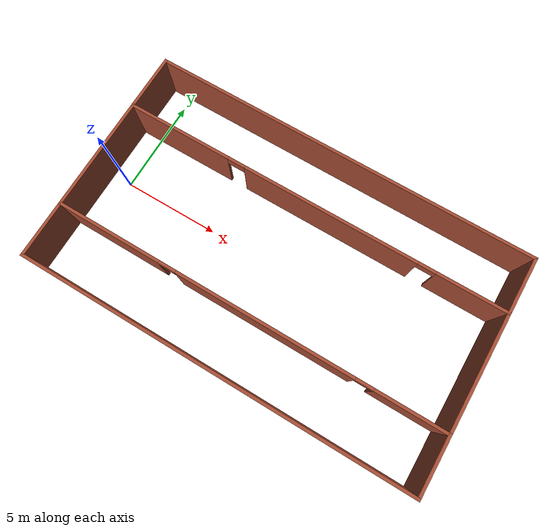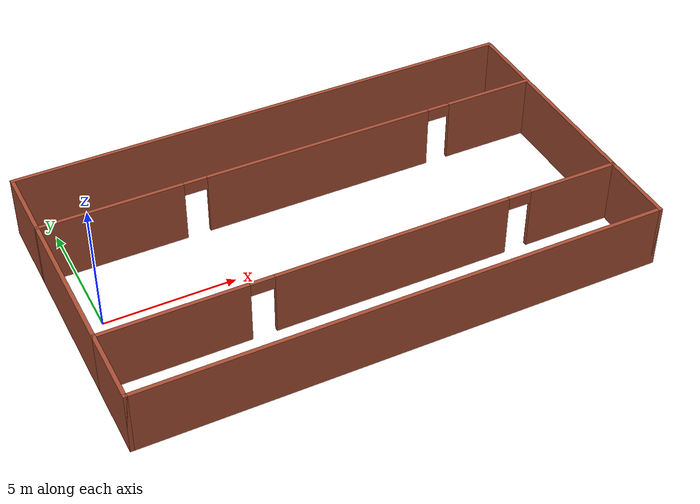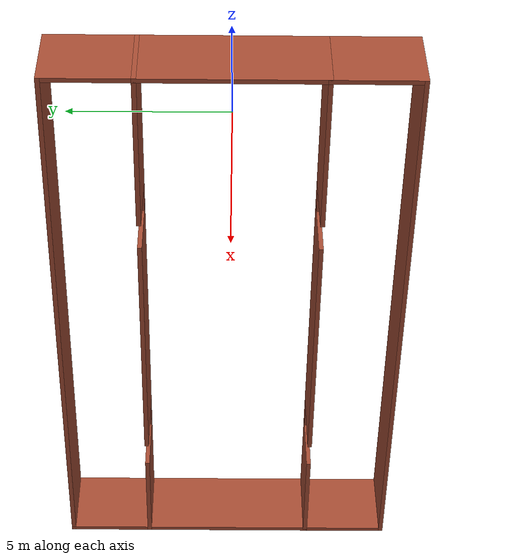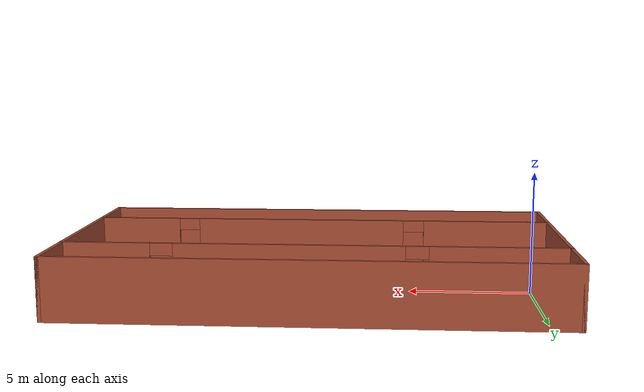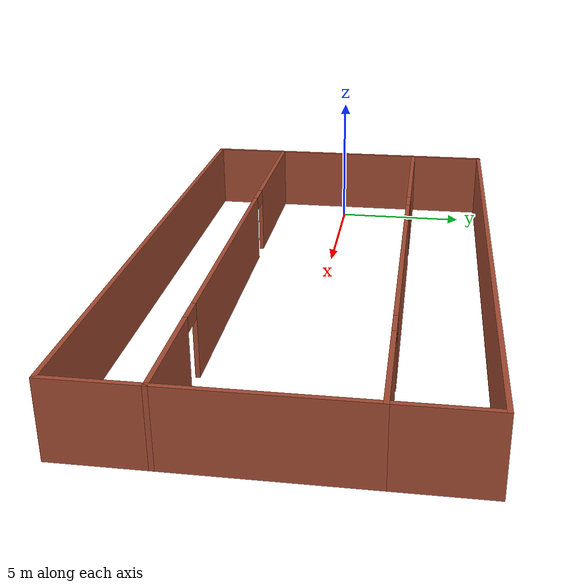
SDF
<?xml version='1.0'?>
<sdf version='1.7'>
  <model name='rltestbed2'>
    <pose>8.84029 0.011957 0 0 -0 0</pose>
    <link name='Wall_16'>
      <collision name='Wall_16_Collision'>
        <geometry>
          <box>
            <size>6 0.15 2.5</size>
          </box>
        </geometry>
        <pose>0 0 1.25 0 -0 0</pose>
      </collision>
      <visual name='Wall_16_Visual'>
        <pose>0 0 1.25 0 -0 0</pose>
        <geometry>
          <box>
            <size>6 0.15 2.5</size>
          </box>
        </geometry>
        <material>
          <script>
            <uri>file://media/materials/scripts/gazebo.material</uri>
            <name>Gazebo/Bricks</name>
          </script>
          <ambient>1 1 1 1</ambient>
        </material>
        <meta>
          <layer>0</layer>
        </meta>
      </visual>
      <pose>-9.925 0 0 0 -0 -1.5708</pose>
    </link>
    <link name='Wall_18'>
      <pose>0 2.925 0 0 -0 0</pose>
      <visual name='Wall_18_Visual_0'>
        <pose>-7.24731 0 1.25 0 -0 0</pose>
        <geometry>
          <box>
            <size>5.50538 0.15 2.5</size>
          </box>
        </geometry>
        <material>
          <script>
            <uri>file://media/materials/scripts/gazebo.material</uri>
            <name>Gazebo/Bricks</name>
          </script>
          <ambient>1 1 1 1</ambient>
        </material>
        <meta>
          <layer>0</layer>
        </meta>
      </visual>
      <collision name='Wall_18_Collision_0'>
        <geometry>
          <box>
            <size>5.50538 0.15 2.5</size>
          </box>
        </geometry>
        <pose>-7.24731 0 1.25 0 -0 0</pose>
      </collision>
      <visual name='Wall_18_Visual_1'>
        <pose>0.94815 0 1.25 0 -0 0</pose>
        <geometry>
          <box>
            <size>9.08554 0.15 2.5</size>
          </box>
        </geometry>
        <material>
          <script>
            <uri>file://media/materials/scripts/gazebo.material</uri>
            <name>Gazebo/Bricks</name>
          </script>
          <ambient>1 1 1 1</ambient>
        </material>
        <meta>
          <layer>0</layer>
        </meta>
      </visual>
      <collision name='Wall_18_Collision_1'>
        <geometry>
          <box>
            <size>9.08554 0.15 2.5</size>
          </box>
        </geometry>
        <pose>0.94815 0 1.25 0 -0 0</pose>
      </collision>
      <visual name='Wall_18_Visual_2'>
        <pose>8.19546 0 1.25 0 -0 0</pose>
        <geometry>
          <box>
            <size>3.60908 0.15 2.5</size>
          </box>
        </geometry>
        <material>
          <script>
            <uri>file://media/materials/scripts/gazebo.material</uri>
            <name>Gazebo/Bricks</name>
          </script>
          <ambient>1 1 1 1</ambient>
        </material>
        <meta>
          <layer>0</layer>
        </meta>
      </visual>
      <collision name='Wall_18_Collision_2'>
        <geometry>
          <box>
            <size>3.60908 0.15 2.5</size>
          </box>
        </geometry>
        <pose>8.19546 0 1.25 0 -0 0</pose>
      </collision>
      <visual name='Wall_18_Visual_3'>
        <pose>-4.04462 0 2.25 0 -0 0</pose>
        <geometry>
          <box>
            <size>0.9 0.15 0.5</size>
          </box>
        </geometry>
        <material>
          <script>
            <uri>file://media/materials/scripts/gazebo.material</uri>
            <name>Gazebo/Bricks</name>
          </script>
          <ambient>1 1 1 1</ambient>
        </material>
        <meta>
          <layer>0</layer>
        </meta>
      </visual>
      <collision name='Wall_18_Collision_3'>
        <geometry>
          <box>
            <size>0.9 0.15 0.5</size>
          </box>
        </geometry>
        <pose>-4.04462 0 2.25 0 -0 0</pose>
      </collision>
      <visual name='Wall_18_Visual_4'>
        <pose>5.94092 0 2.25 0 -0 0</pose>
        <geometry>
          <box>
            <size>0.9 0.15 0.5</size>
          </box>
        </geometry>
        <material>
          <script>
            <uri>file://media/materials/scripts/gazebo.material</uri>
            <name>Gazebo/Bricks</name>
          </script>
          <ambient>1 1 1 1</ambient>
        </material>
        <meta>
          <layer>0</layer>
        </meta>
      </visual>
      <collision name='Wall_18_Collision_4'>
        <geometry>
          <box>
            <size>0.9 0.15 0.5</size>
          </box>
        </geometry>
        <pose>5.94092 0 2.25 0 -0 0</pose>
      </collision>
    </link>
    <link name='Wall_19'>
      <collision name='Wall_19_Collision'>
        <geometry>
          <box>
            <size>6 0.15 2.5</size>
          </box>
        </geometry>
        <pose>0 0 1.25 0 -0 0</pose>
      </collision>
      <visual name='Wall_19_Visual'>
        <pose>0 0 1.25 0 -0 0</pose>
        <geometry>
          <box>
            <size>6 0.15 2.5</size>
          </box>
        </geometry>
        <material>
          <script>
            <uri>file://media/materials/scripts/gazebo.material</uri>
            <name>Gazebo/Bricks</name>
          </script>
          <ambient>1 1 1 1</ambient>
        </material>
        <meta>
          <layer>0</layer>
        </meta>
      </visual>
      <pose>9.925 0 0 0 -0 -1.5708</pose>
    </link>
    <link name='Wall_20'>
      <pose>0 -2.925 0 0 -0 3.14159</pose>
      <visual name='Wall_20_Visual_0'>
        <pose>-8.19546 0 1.25 0 -0 0</pose>
        <geometry>
          <box>
            <size>3.60908 0.15 2.5</size>
          </box>
        </geometry>
        <material>
          <script>
            <uri>file://media/materials/scripts/gazebo.material</uri>
            <name>Gazebo/Bricks</name>
          </script>
          <ambient>1 1 1 1</ambient>
        </material>
        <meta>
          <layer>0</layer>
        </meta>
      </visual>
      <collision name='Wall_20_Collision_0'>
        <geometry>
          <box>
            <size>3.60908 0.15 2.5</size>
          </box>
        </geometry>
        <pose>-8.19546 0 1.25 0 -0 0</pose>
      </collision>
      <visual name='Wall_20_Visual_1'>
        <pose>-0.945863 0 1.25 0 -0 0</pose>
        <geometry>
          <box>
            <size>9.09012 0.15 2.5</size>
          </box>
        </geometry>
        <material>
          <script>
            <uri>file://media/materials/scripts/gazebo.material</uri>
            <name>Gazebo/Bricks</name>
          </script>
          <ambient>1 1 1 1</ambient>
        </material>
        <meta>
          <layer>0</layer>
        </meta>
      </visual>
      <collision name='Wall_20_Collision_1'>
        <geometry>
          <box>
            <size>9.09012 0.15 2.5</size>
          </box>
        </geometry>
        <pose>-0.945863 0 1.25 0 -0 0</pose>
      </collision>
      <visual name='Wall_20_Visual_2'>
        <pose>7.2496 0 1.25 0 -0 0</pose>
        <geometry>
          <box>
            <size>5.5008 0.15 2.5</size>
          </box>
        </geometry>
        <material>
          <script>
            <uri>file://media/materials/scripts/gazebo.material</uri>
            <name>Gazebo/Bricks</name>
          </script>
          <ambient>1 1 1 1</ambient>
        </material>
        <meta>
          <layer>0</layer>
        </meta>
      </visual>
      <collision name='Wall_20_Collision_2'>
        <geometry>
          <box>
            <size>5.5008 0.15 2.5</size>
          </box>
        </geometry>
        <pose>7.2496 0 1.25 0 -0 0</pose>
      </collision>
      <visual name='Wall_20_Visual_3'>
        <pose>-5.94092 0 2.25 0 -0 0</pose>
        <geometry>
          <box>
            <size>0.9 0.15 0.5</size>
          </box>
        </geometry>
        <material>
          <script>
            <uri>file://media/materials/scripts/gazebo.material</uri>
            <name>Gazebo/Bricks</name>
          </script>
          <ambient>1 1 1 1</ambient>
        </material>
        <meta>
          <layer>0</layer>
        </meta>
      </visual>
      <collision name='Wall_20_Collision_3'>
        <geometry>
          <box>
            <size>0.9 0.15 0.5</size>
          </box>
        </geometry>
        <pose>-5.94092 0 2.25 0 -0 0</pose>
      </collision>
      <visual name='Wall_20_Visual_4'>
        <pose>4.0492 0 2.25 0 -0 0</pose>
        <geometry>
          <box>
            <size>0.9 0.15 0.5</size>
          </box>
        </geometry>
        <material>
          <script>
            <uri>file://media/materials/scripts/gazebo.material</uri>
            <name>Gazebo/Bricks</name>
          </script>
          <ambient>1 1 1 1</ambient>
        </material>
        <meta>
          <layer>0</layer>
        </meta>
      </visual>
      <collision name='Wall_20_Collision_4'>
        <geometry>
          <box>
            <size>0.9 0.15 0.5</size>
          </box>
        </geometry>
        <pose>4.0492 0 2.25 0 -0 0</pose>
      </collision>
    </link>
    <link name='Wall_22'>
      <collision name='Wall_22_Collision'>
        <geometry>
          <box>
            <size>3 0.15 2.5</size>
          </box>
        </geometry>
        <pose>0 0 1.25 0 -0 0</pose>
      </collision>
      <visual name='Wall_22_Visual'>
        <pose>0 0 1.25 0 -0 0</pose>
        <geometry>
          <box>
            <size>3 0.15 2.5</size>
          </box>
        </geometry>
        <material>
          <script>
            <uri>file://media/materials/scripts/gazebo.material</uri>
            <name>Gazebo/Bricks</name>
          </script>
          <ambient>1 1 1 1</ambient>
        </material>
        <meta>
          <layer>0</layer>
        </meta>
      </visual>
      <pose>-9.925 4.35 0 0 -0 1.5708</pose>
    </link>
    <link name='Wall_23'>
      <collision name='Wall_23_Collision'>
        <geometry>
          <box>
            <size>20 0.15 2.5</size>
          </box>
        </geometry>
        <pose>0 0 1.25 0 -0 0</pose>
      </collision>
      <visual name='Wall_23_Visual'>
        <pose>0 0 1.25 0 -0 0</pose>
        <geometry>
          <box>
            <size>20 0.15 2.5</size>
          </box>
        </geometry>
        <material>
          <script>
            <uri>file://media/materials/scripts/gazebo.material</uri>
            <name>Gazebo/Bricks</name>
          </script>
          <ambient>1 1 1 1</ambient>
        </material>
        <meta>
          <layer>0</layer>
        </meta>
      </visual>
      <pose>0 5.775 0 0 -0 0</pose>
    </link>
    <link name='Wall_24'>
      <collision name='Wall_24_Collision'>
        <geometry>
          <box>
            <size>3 0.15 2.5</size>
          </box>
        </geometry>
        <pose>0 0 1.25 0 -0 0</pose>
      </collision>
      <visual name='Wall_24_Visual'>
        <pose>0 0 1.25 0 -0 0</pose>
        <geometry>
          <box>
            <size>3 0.15 2.5</size>
          </box>
        </geometry>
        <material>
          <script>
            <uri>file://media/materials/scripts/gazebo.material</uri>
            <name>Gazebo/Bricks</name>
          </script>
          <ambient>1 1 1 1</ambient>
        </material>
        <meta>
          <layer>0</layer>
        </meta>
      </visual>
      <pose>9.925 4.35 0 0 -0 -1.5708</pose>
    </link>
    <link name='Wall_26'>
      <collision name='Wall_26_Collision'>
        <geometry>
          <box>
            <size>3 0.15 2.5</size>
          </box>
        </geometry>
        <pose>0 0 1.25 0 -0 0</pose>
      </collision>
      <visual name='Wall_26_Visual'>
        <pose>0 0 1.25 0 -0 0</pose>
        <geometry>
          <box>
            <size>3 0.15 2.5</size>
          </box>
        </geometry>
        <material>
          <script>
            <uri>file://media/materials/scripts/gazebo.material</uri>
            <name>Gazebo/Bricks</name>
          </script>
          <ambient>1 1 1 1</ambient>
        </material>
        <meta>
          <layer>0</layer>
        </meta>
      </visual>
      <pose>-9.925 -4.35 0 0 -0 -1.5708</pose>
    </link>
    <link name='Wall_28'>
      <collision name='Wall_28_Collision'>
        <geometry>
          <box>
            <size>20 0.15 2.5</size>
          </box>
        </geometry>
        <pose>0 0 1.25 0 -0 0</pose>
      </collision>
      <visual name='Wall_28_Visual'>
        <pose>0 0 1.25 0 -0 0</pose>
        <geometry>
          <box>
            <size>20 0.15 2.5</size>
          </box>
        </geometry>
        <material>
          <script>
            <uri>file://media/materials/scripts/gazebo.material</uri>
            <name>Gazebo/Bricks</name>
          </script>
          <ambient>1 1 1 1</ambient>
        </material>
        <meta>
          <layer>0</layer>
        </meta>
      </visual>
      <pose>0 -5.775 0 0 -0 0</pose>
    </link>
    <link name='Wall_29'>
      <collision name='Wall_29_Collision'>
        <geometry>
          <box>
            <size>3 0.15 2.5</size>
          </box>
        </geometry>
        <pose>0 0 1.25 0 -0 0</pose>
      </collision>
      <visual name='Wall_29_Visual'>
        <pose>0 0 1.25 0 -0 0</pose>
        <geometry>
          <box>
            <size>3 0.15 2.5</size>
          </box>
        </geometry>
        <material>
          <script>
            <uri>file://media/materials/scripts/gazebo.material</uri>
            <name>Gazebo/Bricks</name>
          </script>
          <ambient>1 1 1 1</ambient>
        </material>
        <meta>
          <layer>0</layer>
        </meta>
      </visual>
      <pose>9.925 -4.35 0 0 -0 1.5708</pose>
    </link>
    <static>1</static>
  </model>
</sdf>
